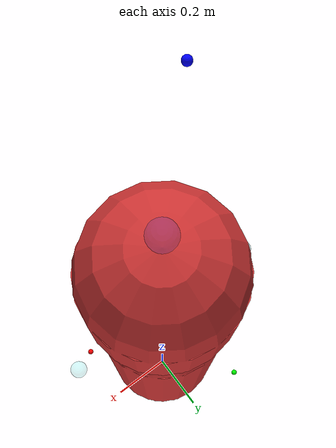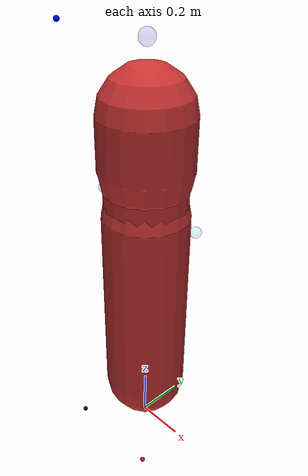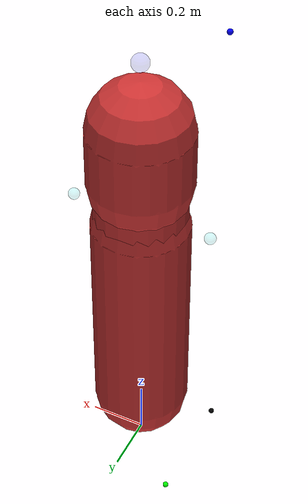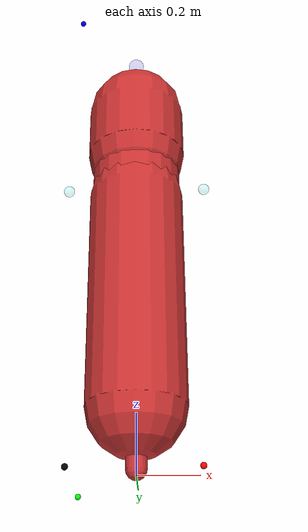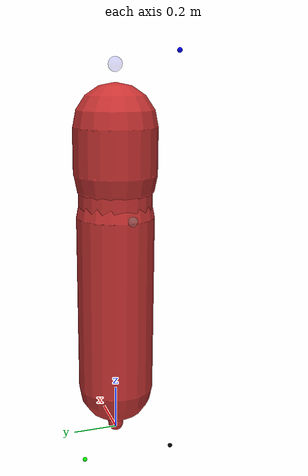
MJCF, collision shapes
<mujoco model="posed_person_object">
  <!-- MuJoCo는 Z-up, radian -->
  <compiler angle="radian" coordinate="local" meshdir="." texturedir="."/>

  <default>
    <!-- 모든 geom은 group을 명시 -->
    <geom group="0" rgba="1 1 1 1" contype="0" conaffinity="0"/>
    <!-- 시각 메쉬용 기본값 -->
    <default class="visual">
      <geom contype="0" conaffinity="0" condim="3" friction="0.8 0.1 0.1"/>
    </default>
    <!-- 충돌 프록시용 기본값 (붉은 반투명) -->
    <default class="collision">
      <geom rgba="0.8 0.2 0.2 0.15" contype="1" conaffinity="1" condim="3" friction="1.0 0.1 0.1"/>
    </default>
  </default>

  <asset>
    <texture file="visuals/human0.png" name="tex-body" type="2d"/>
    <!-- 텍스처가 없으면 이 머티리얼만 사용 -->
    <material name="mat-body" rgba="0.75 0.75 0.75 1.0" specular="0.2" shininess="0.1" reflectance="0.05"/>
    <!-- 👉 당신의 OBJ 파일명으로 변경됨 -->
    <!-- 대부분의 인물 OBJ는 cm 단위라 scale=0.01 권장. 너무 작/크면 이 값만 조정 -->
    <mesh name="final_mesh" file="visuals/FinalBaseMesh.obj" scale="0.01 0.01 0.01"/>
  </asset>

  <worldbody>
    <!-- ✅ freejoint는 최상위 바디에만 -->
    <body name="posed_person_wrapper" pos="0 0 0">
      <freejoint name="root"/>

      <!-- 로더가 찾는 내부 바디는 'object' 여야 함 -->
      <!-- OBJ의 원점이 발이 아닐 수 있으니 필요하면 pos="0 0 zshift"로 보정 -->
      <body name="object" pos="0 0 0">

        <!-- ===== 시각 메쉬 (그룹 0) ===== -->
        <geom class="visual" group="0" type="mesh" mesh="final_mesh" material="mat-body" name="person_visual"/>

        <!-- ===== 충돌 프록시(그룹 1) : '아주 작은' 발바닥 캡슐 하나만 둡니다 =====
             이 AABB가 배치기의 경계로 쓰이므로 location_valid가 쉽게 True가 됩니다. -->
        <!-- 높이 약 5cm짜리 작은 캡슐: 필요 시 half-diameter(size)·fromto 위치를 미세조정 -->
        <geom class="collision" group="1" type="capsule"
              fromto="0 0 0.02  0 0 0.07" size="0.035" name="col_footprint"/>

        <!-- ===== Collision capsules/spheres (group=1) ===== -->
        <geom class="collision" group="1" type="capsule" fromto="0 0 1.02 0 0 0.22" size="0.17" name="col_pelvis"/>
        <geom class="collision" group="1" type="capsule" fromto="0 0 1.20 0 0 1.02" size="0.16" name="col_abdomen"/>
        <geom class="collision" group="1" type="capsule" fromto="0 0 1.40 0 0 1.20" size="0.18" name="col_chest"/>

        <!-- ===== 외곽 AABB 포인트 ===== -->
        <site rgba="0 0 0 1" size="0.01" pos="-0.20 -0.20 -0.02" name="ext_p0"/>
        <site rgba="1 0 0 1" size="0.01" pos=" 0.20 -0.20 -0.02" name="ext_px"/>
        <site rgba="0 1 0 1" size="0.01" pos="-0.20 0.20 -0.02" name="ext_py"/>
        <site rgba="0 0 1 1" size="0.01" pos="-0.20 -0.20 1.70" name="ext_pz"/>

        <!-- ===== 상호작용용 사이트(옵션) ===== -->
        <site name="human_attention_site" pos="0 0 1.35" size="0.04" rgba="0.9 0.2 0.2 0.15"/>
        <site name="human_head"           pos="0 0 1.65" size="0.03" rgba="0.2 0.2 0.9 0.15"/>
        <site name="human_torso"          pos="0 0 1.15" size="0.03" rgba="0.2 0.9 0.2 0.15"/>
        <site name="human_handover_place_R" pos="0.25 0 1.05" size="0.02" rgba="0.2 0.9 0.9 0.15"/>
        <site name="human_handover_place_L" pos="-0.25 0 1.05" size="0.02" rgba="0.2 0.9 0.9 0.15"/>

      </body>
    </body>
  </worldbody>
</mujoco>
